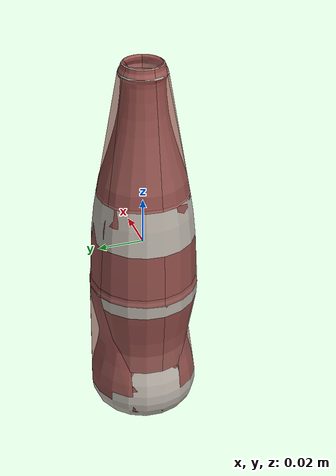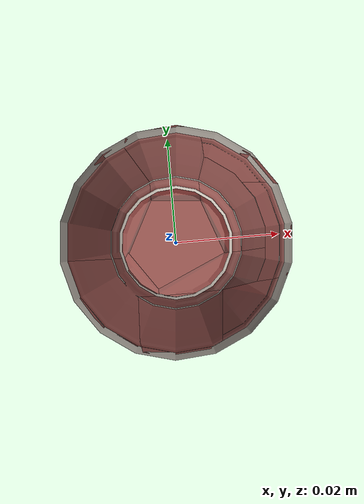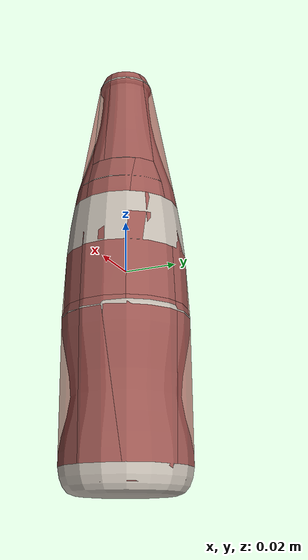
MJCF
<mujoco model="bottled_drink_2">
  <asset>
    <mesh file="visual/model_normalized_0.obj" name="model_normalized_0_vis" scale="0.16499999999999998 0.16499999999999998 0.16499999999999998" refquat="1.0 0.0 0.0 0.0"/>
    <mesh file="visual/model_normalized_1.obj" name="model_normalized_1_vis" scale="0.16499999999999998 0.16499999999999998 0.16499999999999998" refquat="1.0 0.0 0.0 0.0"/>
    <texture type="2d" name="image0" file="visual/image0.png"/>
    <texture type="2d" name="image1" file="visual/image1.png"/>
    <material name="02_-_Default" texture="image0" specular="0.5" shininess="0.611841143"/>
    <material name="03_-_Default" texture="image1" specular="0.5" shininess="0.276786677"/>
    <mesh file="collision/collision_mesh_collision_0.obj" name="bottled_collision_mesh_0" scale="0.16499999999999998 0.16499999999999998 0.16499999999999998" refquat="1.0 0.0 0.0 0.0"/>
    <mesh file="collision/collision_mesh_collision_1.obj" name="bottled_collision_mesh_1" scale="0.16499999999999998 0.16499999999999998 0.16499999999999998" refquat="1.0 0.0 0.0 0.0"/>
    <mesh file="collision/collision_mesh_collision_2.obj" name="bottled_collision_mesh_2" scale="0.16499999999999998 0.16499999999999998 0.16499999999999998" refquat="1.0 0.0 0.0 0.0"/>
    <mesh file="collision/collision_mesh_collision_3.obj" name="bottled_collision_mesh_3" scale="0.16499999999999998 0.16499999999999998 0.16499999999999998" refquat="1.0 0.0 0.0 0.0"/>
    <mesh file="collision/collision_mesh_collision_4.obj" name="bottled_collision_mesh_4" scale="0.16499999999999998 0.16499999999999998 0.16499999999999998" refquat="1.0 0.0 0.0 0.0"/>
    <mesh file="collision/collision_mesh_collision_5.obj" name="bottled_collision_mesh_5" scale="0.16499999999999998 0.16499999999999998 0.16499999999999998" refquat="1.0 0.0 0.0 0.0"/>
    <mesh file="collision/collision_mesh_collision_6.obj" name="bottled_collision_mesh_6" scale="0.16499999999999998 0.16499999999999998 0.16499999999999998" refquat="1.0 0.0 0.0 0.0"/>
    <mesh file="collision/collision_mesh_collision_7.obj" name="bottled_collision_mesh_7" scale="0.16499999999999998 0.16499999999999998 0.16499999999999998" refquat="1.0 0.0 0.0 0.0"/>
    <mesh file="collision/collision_mesh_collision_8.obj" name="bottled_collision_mesh_8" scale="0.16499999999999998 0.16499999999999998 0.16499999999999998" refquat="1.0 0.0 0.0 0.0"/>
    <mesh file="collision/collision_mesh_collision_9.obj" name="bottled_collision_mesh_9" scale="0.16499999999999998 0.16499999999999998 0.16499999999999998" refquat="1.0 0.0 0.0 0.0"/>
    <mesh file="collision/collision_mesh_collision_10.obj" name="bottled_collision_mesh_10" scale="0.16499999999999998 0.16499999999999998 0.16499999999999998" refquat="1.0 0.0 0.0 0.0"/>
    <mesh file="collision/collision_mesh_collision_11.obj" name="bottled_collision_mesh_11" scale="0.16499999999999998 0.16499999999999998 0.16499999999999998" refquat="1.0 0.0 0.0 0.0"/>
    <mesh file="collision/collision_mesh_collision_12.obj" name="bottled_collision_mesh_12" scale="0.16499999999999998 0.16499999999999998 0.16499999999999998" refquat="1.0 0.0 0.0 0.0"/>
    <mesh file="collision/collision_mesh_collision_13.obj" name="bottled_collision_mesh_13" scale="0.16499999999999998 0.16499999999999998 0.16499999999999998" refquat="1.0 0.0 0.0 0.0"/>
    <mesh file="collision/collision_mesh_collision_14.obj" name="bottled_collision_mesh_14" scale="0.16499999999999998 0.16499999999999998 0.16499999999999998" refquat="1.0 0.0 0.0 0.0"/>
    <mesh file="collision/collision_mesh_collision_15.obj" name="bottled_collision_mesh_15" scale="0.16499999999999998 0.16499999999999998 0.16499999999999998" refquat="1.0 0.0 0.0 0.0"/>
  </asset>
  <default>
    <default class="region">
      <geom group="1" conaffinity="0" contype="0" rgba="0 1 0 0"/>
    </default>
    <default class="collision">
      <geom group="0" rgba="0.5 0 0 0.5" density="1000.0"/>
    </default>
  </default>
  <worldbody>
    <body>
      <body name="object">
        <geom solimp="0.998 0.998 0.001" solref="0.001 1" density="100" friction="0.95 0.3 0.1" type="mesh" mesh="model_normalized_0_vis" conaffinity="0" contype="0" group="1" material="03_-_Default"/>
        <geom solimp="0.998 0.998 0.001" solref="0.001 1" density="100" friction="0.95 0.3 0.1" type="mesh" mesh="model_normalized_1_vis" conaffinity="0" contype="0" group="1" material="02_-_Default"/>
        <geom class="region" name="reg_bbox" type="box" pos="3.828000000000164e-07 1.074150000000204e-06 1.847999999989025e-07" size="0.024013365749999998 0.024012129899999998 0.08249981519999999"/>
        <geom mesh="bottled_collision_mesh_0" type="mesh" class="collision"/>
        <geom mesh="bottled_collision_mesh_1" type="mesh" class="collision"/>
        <geom mesh="bottled_collision_mesh_2" type="mesh" class="collision"/>
        <geom mesh="bottled_collision_mesh_3" type="mesh" class="collision"/>
        <geom mesh="bottled_collision_mesh_4" type="mesh" class="collision"/>
        <geom mesh="bottled_collision_mesh_5" type="mesh" class="collision"/>
        <geom mesh="bottled_collision_mesh_6" type="mesh" class="collision"/>
        <geom mesh="bottled_collision_mesh_7" type="mesh" class="collision"/>
        <geom mesh="bottled_collision_mesh_8" type="mesh" class="collision"/>
        <geom mesh="bottled_collision_mesh_9" type="mesh" class="collision"/>
        <geom mesh="bottled_collision_mesh_10" type="mesh" class="collision"/>
        <geom mesh="bottled_collision_mesh_11" type="mesh" class="collision"/>
        <geom mesh="bottled_collision_mesh_12" type="mesh" class="collision"/>
        <geom mesh="bottled_collision_mesh_13" type="mesh" class="collision"/>
        <geom mesh="bottled_collision_mesh_14" type="mesh" class="collision"/>
        <geom mesh="bottled_collision_mesh_15" type="mesh" class="collision"/>
      </body>
    </body>
  </worldbody>
</mujoco>
